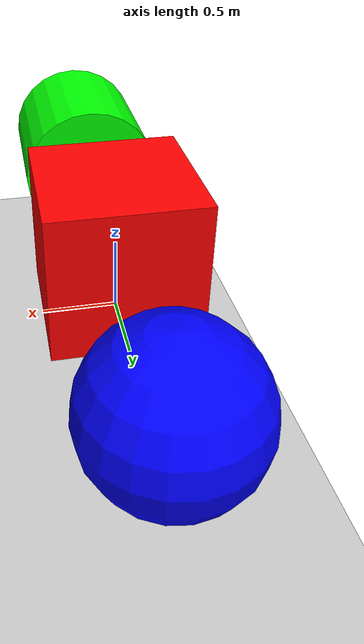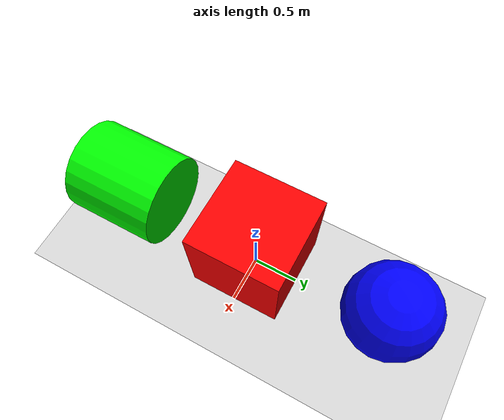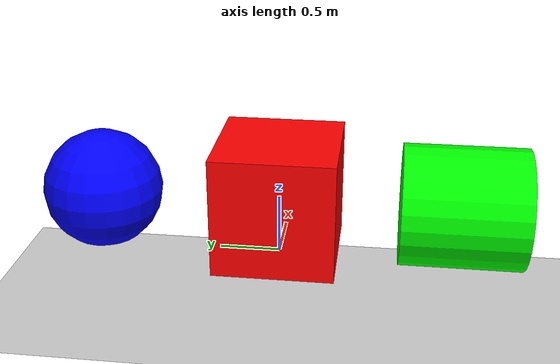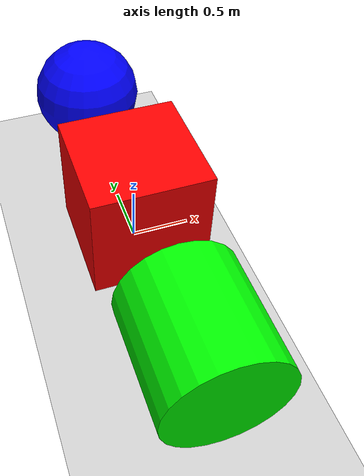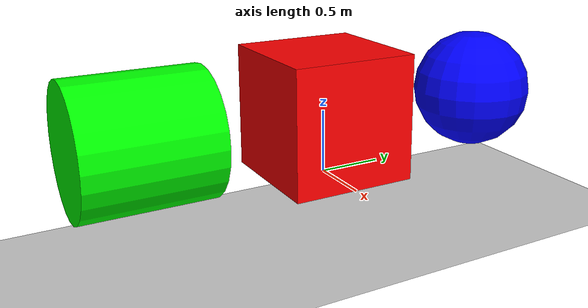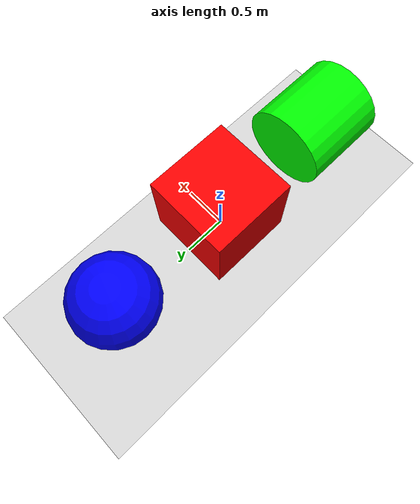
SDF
<?xml version="1.0" ?>
<!--
  Log record demo.

  Running this world will record log files to /tmp/log. You can playback
  running the log_playback.sdf file.
-->
<sdf version="1.6">
  <world name="shapes">
    <physics name="1ms" type="ode">
      <max_step_size>0.001</max_step_size>
      <real_time_factor>1.0</real_time_factor>
    </physics>
    <plugin
      filename="libignition-gazebo1-physics-system.so"
      name="ignition::gazebo::systems::Physics">
    </plugin>
    <plugin
      filename="libignition-gazebo1-user-commands-system.so"
      name="ignition::gazebo::systems::UserCommands">
    </plugin>
    <plugin
      filename="libignition-gazebo1-scene-broadcaster-system.so"
      name="ignition::gazebo::systems::SceneBroadcaster">
    </plugin>
    <plugin
      filename="libignition-gazebo1-log-system.so"
      name="ignition::gazebo::systems::LogRecord">
      <!-- Optional, directories to write recorded files. If unspecified,
             will record to default. -->
      <path>/tmp/log</path>
    </plugin>

    <gui fullscreen="0">

      <!-- 3D scene -->
      <plugin filename="Scene3D" name="3D View">
        <ignition-gui>
          <title>3D View</title>
          <property type="bool" key="showTitleBar">false</property>
          <property type="bool" key="resizable">false</property>
          <property type="double" key="z">0</property>
          <anchor line="right" target="window" target_line="right"/>
          <anchor line="left" target="window" target_line="left"/>
          <anchor line="top" target="window" target_line="top"/>
          <anchor line="bottom" target="window" target_line="bottom"/>
        </ignition-gui>

        <engine>ogre2</engine>
        <scene>scene</scene>
        <ambient_light>0.4 0.4 0.4</ambient_light>
        <background_color>0.8 0.8 0.8</background_color>
        <camera_pose>-6 0 6 0 0.5 0</camera_pose>
        <service>/world/shapes/scene/info</service>
        <pose_topic>/world/shapes/pose/info</pose_topic>
        <scene_topic>/world/shapes/scene/info</scene_topic>
        <deletion_topic>/world/shapes/scene/deletion</deletion_topic>
      </plugin>

      <!-- World control -->
      <plugin filename="WorldControl" name="World control">
        <ignition-gui>
          <title>World control</title>
          <property type="bool" key="showTitleBar">false</property>
          <property type="bool" key="resizable">false</property>
          <property type="double" key="height">72</property>
          <property type="double" key="width">121</property>
          <property type="double" key="z">1</property>
          <anchor line="left" target="window" target_line="left"/>
          <anchor line="bottom" target="window" target_line="bottom"/>
        </ignition-gui>

        <play_pause>true</play_pause>
        <step>true</step>
        <start_paused>true</start_paused>
        <service>/world/shapes/control</service>
        <stats_topic>/world/shapes/stats</stats_topic>

      </plugin>

      <!-- World statistics -->
      <plugin filename="WorldStats" name="World stats">
        <ignition-gui>
          <title>World stats</title>
          <property type="bool" key="showTitleBar">false</property>
          <property type="bool" key="resizable">false</property>
          <property type="double" key="height">110</property>
          <property type="double" key="width">290</property>
          <property type="double" key="z">1</property>
          <anchor line="right" target="window" target_line="right"/>
          <anchor line="bottom" target="window" target_line="bottom"/>
        </ignition-gui>

        <sim_time>true</sim_time>
        <real_time>true</real_time>
        <real_time_factor>true</real_time_factor>
        <iterations>true</iterations>
        <topic>/world/shapes/stats</topic>

      </plugin>

    </gui>

    <light type="directional" name="sun">
      <cast_shadows>true</cast_shadows>
      <pose>0 0 10 0 0 0</pose>
      <diffuse>0.8 0.8 0.8 1</diffuse>
      <specular>0.2 0.2 0.2 1</specular>
      <attenuation>
        <range>1000</range>
        <constant>0.9</constant>
        <linear>0.01</linear>
        <quadratic>0.001</quadratic>
      </attenuation>
      <direction>-0.5 0.1 -0.9</direction>
    </light>

    <model name="ground_plane">
      <static>true</static>
      <pose>0 0 -0.5 0 0.52 0</pose>
      <link name="link">
        <collision name="collision">
          <geometry>
            <plane>
              <normal>0 0 1</normal>
            </plane>
          </geometry>
        </collision>
        <visual name="visual">
          <geometry>
            <plane>
              <normal>0 0 1</normal>
              <size>100 100</size>
            </plane>
          </geometry>
          <material>
            <ambient>0.8 0.8 0.8 1</ambient>
            <diffuse>0.8 0.8 0.8 1</diffuse>
            <specular>0.8 0.8 0.8 1</specular>
            <emissive>0.8 0.8 0.8 1</emissive>
          </material>
        </visual>
      </link>
    </model>

    <model name="box">
      <pose>0 0 0.5 0 0 0</pose>
      <link name="box_link">
        <inertial>
          <inertia>
            <ixx>1</ixx>
            <ixy>0</ixy>
            <ixz>0</ixz>
            <iyy>1</iyy>
            <iyz>0</iyz>
            <izz>1</izz>
          </inertia>
          <mass>1.0</mass>
        </inertial>
        <collision name="box_collision">
          <geometry>
            <box>
              <size>1 1 1</size>
            </box>
          </geometry>
        </collision>

        <visual name="box_visual">
          <geometry>
            <box>
              <size>1 1 1</size>
            </box>
          </geometry>
          <material>
            <ambient>1 0 0 1</ambient>
            <diffuse>1 0 0 1</diffuse>
            <specular>1 0 0 1</specular>
            <emissive>1 0 0 1</emissive>
          </material>
        </visual>
      </link>
    </model>

    <model name="cylinder">
      <pose>0 -1.5 0.5 1.57079632679 0 0</pose>
      <link name="cylinder_link">
        <inertial>
          <inertia>
            <ixx>2</ixx>
            <ixy>0</ixy>
            <ixz>0</ixz>
            <iyy>2</iyy>
            <iyz>0</iyz>
            <izz>2</izz>
          </inertia>
          <mass>2.0</mass>
        </inertial>
        <collision name="cylinder_collision">
          <geometry>
            <cylinder>
              <radius>0.5</radius>
              <length>1.0</length>
            </cylinder>
          </geometry>
        </collision>

        <visual name="cylinder_visual">
          <geometry>
            <cylinder>
              <radius>0.5</radius>
              <length>1.0</length>
            </cylinder>
          </geometry>
          <material>
            <ambient>0 1 0 1</ambient>
            <diffuse>0 1 0 1</diffuse>
            <specular>0 1 0 1</specular>
            <emissive>0 1 0 1</emissive>
          </material>
        </visual>
      </link>
    </model>

    <model name="sphere">
      <pose>0 1.5 0.5 0 0 0</pose>
      <link name="sphere_link">
        <inertial>
          <inertia>
            <ixx>3</ixx>
            <ixy>0</ixy>
            <ixz>0</ixz>
            <iyy>3</iyy>
            <iyz>0</iyz>
            <izz>3</izz>
          </inertia>
          <mass>3.0</mass>
        </inertial>
        <collision name="sphere_collision">
          <geometry>
            <sphere>
              <radius>0.5</radius>
            </sphere>
          </geometry>
        </collision>

        <visual name="sphere_visual">
          <geometry>
            <sphere>
              <radius>0.5</radius>
            </sphere>
          </geometry>
          <material>
            <ambient>0 0 1 1</ambient>
            <diffuse>0 0 1 1</diffuse>
            <specular>0 0 1 1</specular>
            <emissive>0 0 1 1</emissive>
          </material>
        </visual>
      </link>
    </model>
  </world>
</sdf>
